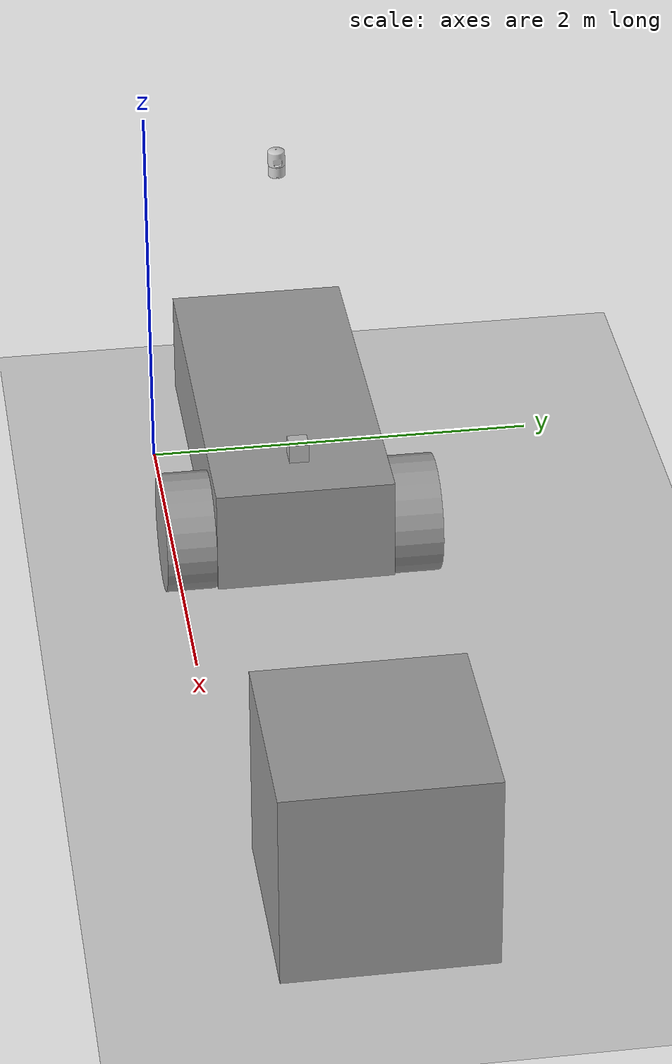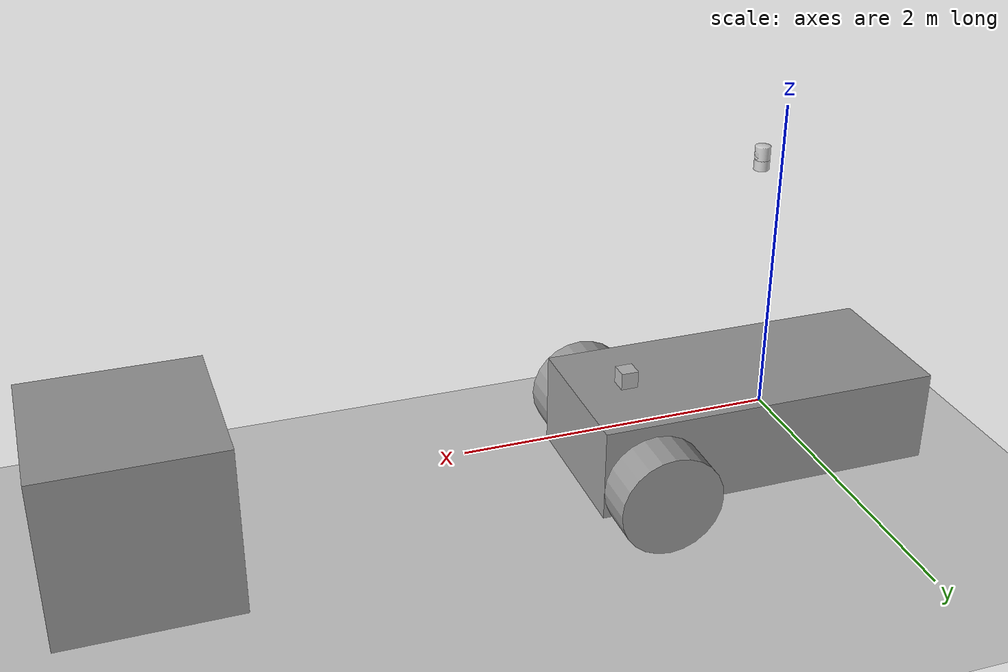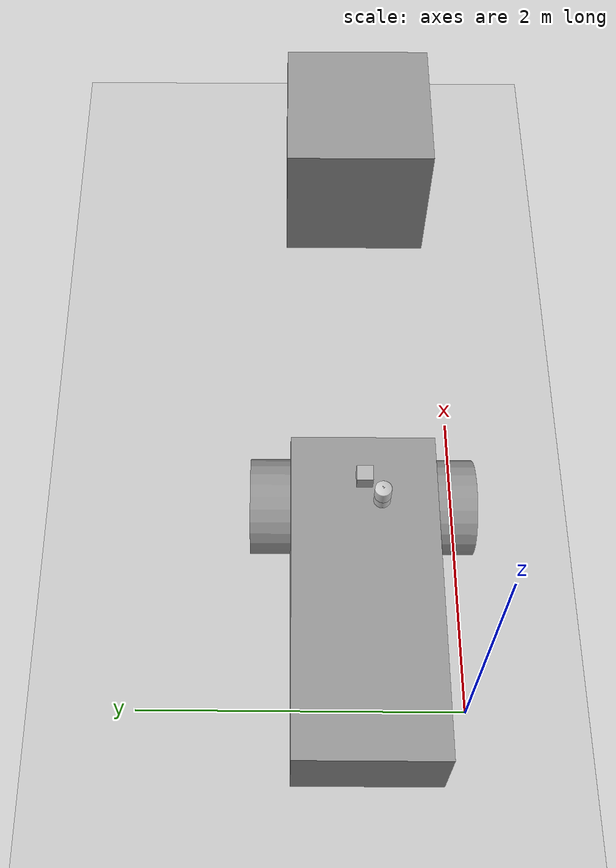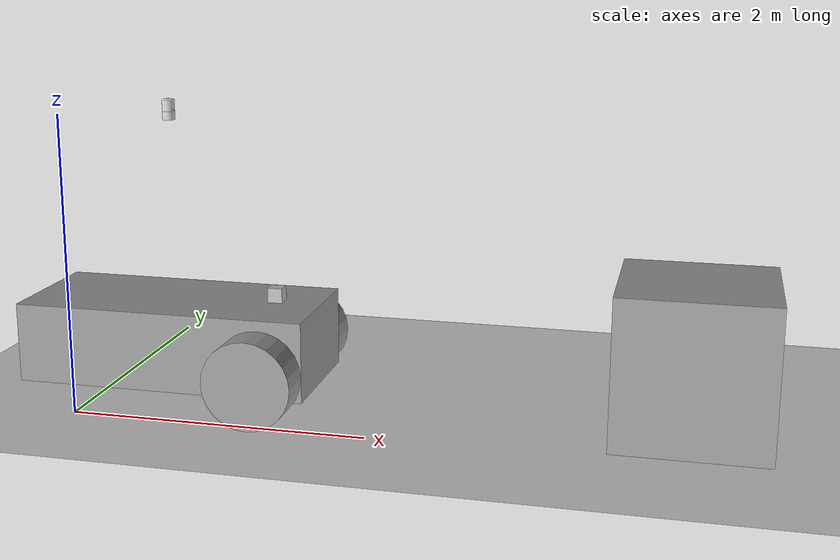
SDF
<sdf version="1.7">
 <world name="default">
  <light name="sun" type="directional">
   <pose>0 0 10 0 -0 0</pose>
   <diffuse>0.8 0.8 0.8 1</diffuse>
   <specular>0.2 0.2 0.2 1</specular>
   <attenuation>
    <range>1000</range>
    <constant>0.9</constant>
    <linear>0.01</linear>
    <quadratic>0.001</quadratic>
   </attenuation>
   <direction>-0.5 0.1 -0.9</direction>
   <spot><inner_angle>0</inner_angle><outer_angle>0</outer_angle><falloff>0</falloff></spot>
  </light>
  <model name="ground_plane">
   <static>1</static>
   <link name="link">
    <collision name="collision">
     <geometry><plane><normal>0 0 1</normal><size>100 100</size></plane></geometry>
     <surface><friction><ode><mu>100</mu><mu2>50</mu2></ode></friction></surface>
    </collision>
    <visual name="visual">
     <cast_shadows>0</cast_shadows>
     <geometry><plane><normal>0 0 1</normal><size>100 100</size></plane></geometry>
     <material>
      <script><uri>file://media/materials/scripts/gazebo.material</uri><name>Gazebo/Grey</name></script>
     </material>
    </visual>
   </link>
  </model>
  <gravity>0 0 -9.8</gravity>
  <magnetic_field>6e-06 2.3e-05 -4.2e-05</magnetic_field>
  <atmosphere type="adiabatic"/>
  <physics type="ode">
   <max_step_size>0.001</max_step_size>
   <real_time_factor>1</real_time_factor>
   <real_time_update_rate>1000</real_time_update_rate>
  </physics>
  <scene><ambient>0.4 0.4 0.4 1</ambient><background>0.7 0.7 0.7 1</background><shadows>1</shadows></scene>
  <spherical_coordinates>
   <surface_model>EARTH_WGS84</surface_model>
   <latitude_deg>0</latitude_deg>
   <longitude_deg>0</longitude_deg>
   <elevation>0</elevation>
   <heading_deg>0</heading_deg>
  </spherical_coordinates>
  <audio><device>default</device></audio>
  <model name="velodyne_hdl-32">
   <link name="link_0">
    <inertial>
     <mass>0.978008</mass>
     <inertia>
      <ixx>0.122564</ixx>
      <ixy>0</ixy>
      <ixz>0</ixz>
      <iyy>0.407773</iyy>
      <iyz>0</iyz>
      <izz>0.472213</izz>
     </inertia>
    </inertial>
    <pose>0 0 0.4 0 -0 0</pose>
    <visual name="visual">
     <geometry><box><size>2.01366 0.897702 0.541504</size></box></geometry>
     <material>
      <lighting>1</lighting>
      <script><uri>file://media/materials/scripts/gazebo.material</uri><name>Gazebo/Grey</name></script>
      <shader type="pixel"><normal_map>__default__</normal_map></shader>
      <ambient>0.3 0.3 0.3 1</ambient>
      <diffuse>0.7 0.7 0.7 1</diffuse>
      <specular>0.01 0.01 0.01 1</specular>
      <emissive>0 0 0 1</emissive>
     </material>
    </visual>
    <collision name="collision">
     <geometry><box><size>2.01366 0.897702 0.541504</size></box></geometry>
     <surface>
      <friction>
       <ode><mu>1</mu><mu2>1</mu2><fdir1>0 0 0</fdir1><slip1>0</slip1><slip2>0</slip2></ode>
       <torsional>
        <coefficient>1</coefficient>
        <patch_radius>0</patch_radius>
        <surface_radius>0</surface_radius>
        <use_patch_radius>1</use_patch_radius>
        <ode><slip>0</slip></ode>
       </torsional>
      </friction>
      <bounce><restitution_coefficient>0</restitution_coefficient><threshold>1e+06</threshold></bounce>
      <contact>
       <collide_without_contact>0</collide_without_contact>
       <collide_without_contact_bitmask>1</collide_without_contact_bitmask>
       <collide_bitmask>1</collide_bitmask>
       <ode>
        <soft_cfm>0</soft_cfm>
        <soft_erp>0.2</soft_erp>
        <kp>1e+13</kp>
        <kd>1</kd>
        <max_vel>0.01</max_vel>
        <min_depth>0</min_depth>
       </ode>
       <bullet>
        <split_impulse>1</split_impulse>
        <split_impulse_penetration_threshold>-0.01</split_impulse_penetration_threshold>
        <soft_cfm>0</soft_cfm>
        <soft_erp>0.2</soft_erp>
        <kp>1e+13</kp>
        <kd>1</kd>
       </bullet>
      </contact>
     </surface>
    </collision>
   </link>
   <link name="link_1">
    <inertial>
     <mass>1</mass>
     <inertia><ixx>0.145833</ixx><ixy>0</ixy><ixz>0</ixz><iyy>0.145833</iyy><iyz>0</iyz><izz>0.125</izz></inertia>
    </inertial>
    <pose>0.70683 -0.573879 0.3 1.5707 -0 0</pose>
    <visual name="visual">
     <geometry><cylinder><radius>0.3</radius><length>0.25</length></cylinder></geometry>
     <material>
      <lighting>1</lighting>
      <script><uri>file://media/materials/scripts/gazebo.material</uri><name>Gazebo/Grey</name></script>
      <shader type="pixel"><normal_map>__default__</normal_map></shader>
      <ambient>0.3 0.3 0.3 1</ambient>
      <diffuse>0.7 0.7 0.7 1</diffuse>
      <specular>0.01 0.01 0.01 1</specular>
      <emissive>0 0 0 1</emissive>
     </material>
    </visual>
    <collision name="collision">
     <geometry><cylinder><radius>0.3</radius><length>0.25</length></cylinder></geometry>
     <surface>
      <friction>
       <ode><mu>1</mu><mu2>1</mu2><fdir1>0 0 0</fdir1><slip1>0</slip1><slip2>0</slip2></ode>
       <torsional>
        <coefficient>1</coefficient>
        <patch_radius>0</patch_radius>
        <surface_radius>0</surface_radius>
        <use_patch_radius>1</use_patch_radius>
        <ode><slip>0</slip></ode>
       </torsional>
      </friction>
      <bounce><restitution_coefficient>0</restitution_coefficient><threshold>1e+06</threshold></bounce>
      <contact>
       <collide_without_contact>0</collide_without_contact>
       <collide_without_contact_bitmask>1</collide_without_contact_bitmask>
       <collide_bitmask>1</collide_bitmask>
       <ode>
        <soft_cfm>0</soft_cfm>
        <soft_erp>0.2</soft_erp>
        <kp>1e+13</kp>
        <kd>1</kd>
        <max_vel>0.01</max_vel>
        <min_depth>0</min_depth>
       </ode>
       <bullet>
        <split_impulse>1</split_impulse>
        <split_impulse_penetration_threshold>-0.01</split_impulse_penetration_threshold>
        <soft_cfm>0</soft_cfm>
        <soft_erp>0.2</soft_erp>
        <kp>1e+13</kp>
        <kd>1</kd>
       </bullet>
      </contact>
     </surface>
    </collision>
   </link>
   <link name="link_1_clone">
    <inertial>
     <mass>1</mass>
     <inertia><ixx>0.145833</ixx><ixy>0</ixy><ixz>0</ixz><iyy>0.145833</iyy><iyz>0</iyz><izz>0.125</izz></inertia>
    </inertial>
    <pose>0.70683 0.573879 0.3 1.5707 -0 0</pose>
    <visual name="visual">
     <geometry><cylinder><radius>0.3</radius><length>0.25</length></cylinder></geometry>
     <material>
      <lighting>1</lighting>
      <script><uri>file://media/materials/scripts/gazebo.material</uri><name>Gazebo/Grey</name></script>
      <shader type="pixel"><normal_map>__default__</normal_map></shader>
      <ambient>0.3 0.3 0.3 1</ambient>
      <diffuse>0.7 0.7 0.7 1</diffuse>
      <specular>0.01 0.01 0.01 1</specular>
      <emissive>0 0 0 1</emissive>
     </material>
    </visual>
    <collision name="collision">
     <geometry><cylinder><radius>0.3</radius><length>0.25</length></cylinder></geometry>
     <surface>
      <friction>
       <ode><mu>1</mu><mu2>1</mu2><fdir1>0 0 0</fdir1><slip1>0</slip1><slip2>0</slip2></ode>
       <torsional>
        <coefficient>1</coefficient>
        <patch_radius>0</patch_radius>
        <surface_radius>0</surface_radius>
        <use_patch_radius>1</use_patch_radius>
        <ode><slip>0</slip></ode>
       </torsional>
      </friction>
      <bounce><restitution_coefficient>0</restitution_coefficient><threshold>1e+06</threshold></bounce>
      <contact>
       <collide_without_contact>0</collide_without_contact>
       <collide_without_contact_bitmask>1</collide_without_contact_bitmask>
       <collide_bitmask>1</collide_bitmask>
       <ode>
        <soft_cfm>0</soft_cfm>
        <soft_erp>0.2</soft_erp>
        <kp>1e+13</kp>
        <kd>1</kd>
        <max_vel>0.01</max_vel>
        <min_depth>0</min_depth>
       </ode>
       <bullet>
        <split_impulse>1</split_impulse>
        <split_impulse_penetration_threshold>-0.01</split_impulse_penetration_threshold>
        <soft_cfm>0</soft_cfm>
        <soft_erp>0.2</soft_erp>
        <kp>1e+13</kp>
        <kd>1</kd>
       </bullet>
      </contact>
     </surface>
    </collision>
   </link>
   <link name="link_2">
    <inertial>
     <mass>1</mass>
     <inertia><ixx>0.1</ixx><ixy>0</ixy><ixz>0</ixz><iyy>0.1</iyy><iyz>0</iyz><izz>0.1</izz></inertia>
    </inertial>
    <pose>-0.80683 0 0.2 0 -0 0</pose>
    <visual name="visual">
     <geometry><sphere><radius>0.2</radius></sphere></geometry>
     <material>
      <lighting>1</lighting>
      <script><uri>file://media/materials/scripts/gazebo.material</uri><name>Gazebo/Grey</name></script>
      <shader type="pixel"><normal_map>__default__</normal_map></shader>
      <ambient>0.3 0.3 0.3 1</ambient>
      <diffuse>0.7 0.7 0.7 1</diffuse>
      <specular>0.01 0.01 0.01 1</specular>
      <emissive>0 0 0 1</emissive>
     </material>
    </visual>
    <collision name="collision">
     <geometry><sphere><radius>0.2</radius></sphere></geometry>
     <surface>
      <friction>
       <ode><mu>1</mu><mu2>1</mu2><fdir1>0 0 0</fdir1><slip1>0</slip1><slip2>0</slip2></ode>
       <torsional>
        <coefficient>1</coefficient>
        <patch_radius>0</patch_radius>
        <surface_radius>0</surface_radius>
        <use_patch_radius>1</use_patch_radius>
        <ode><slip>0</slip></ode>
       </torsional>
      </friction>
      <bounce><restitution_coefficient>0</restitution_coefficient><threshold>1e+06</threshold></bounce>
      <contact>
       <collide_without_contact>0</collide_without_contact>
       <collide_without_contact_bitmask>1</collide_without_contact_bitmask>
       <collide_bitmask>1</collide_bitmask>
       <ode>
        <soft_cfm>0</soft_cfm>
        <soft_erp>0.2</soft_erp>
        <kp>1e+13</kp>
        <kd>1</kd>
        <max_vel>0.01</max_vel>
        <min_depth>0</min_depth>
       </ode>
       <bullet>
        <split_impulse>1</split_impulse>
        <split_impulse_penetration_threshold>-0.01</split_impulse_penetration_threshold>
        <soft_cfm>0</soft_cfm>
        <soft_erp>0.2</soft_erp>
        <kp>1e+13</kp>
        <kd>1</kd>
       </bullet>
      </contact>
     </surface>
    </collision>
   </link>
   <model name="depth_camera">
    <link name="link">
     <pose>0 0 0.05 0 -0 0</pose>
     <inertial>
      <mass>0.1</mass>
      <inertia>
       <ixx>0.000166667</ixx>
       <iyy>0.000166667</iyy>
       <izz>0.000166667</izz>
       <ixy>0</ixy>
       <ixz>0</ixz>
       <iyz>0</iyz>
      </inertia>
     </inertial>
     <collision name="collision"><geometry><box><size>0.1 0.1 0.1</size></box></geometry></collision>
     <visual name="visual"><geometry><box><size>0.1 0.1 0.1</size></box></geometry></visual>
     <sensor name="camera" type="depth">
      <camera>
       <horizontal_fov>1.047</horizontal_fov>
       <image><width>320</width><height>240</height></image>
       <clip><near>0.1</near><far>100</far></clip>
      </camera>
      <always_on>1</always_on>
      <update_rate>30</update_rate>
      <visualize>1</visualize>
     </sensor>
    </link>
    <pose>0.703483 0.000736 0.682741 0 -0 0</pose>
   </model>
   <model name="velodyne">
    <link name="base">
     <pose>0 0 0.029335 0 -0 0</pose>
     <inertial>
      <mass>1.2</mass>
      <inertia>
       <ixx>0.00108747</ixx>
       <iyy>0.00108747</iyy>
       <izz>0.00109244</izz>
       <ixy>0</ixy>
       <ixz>0</ixz>
       <iyz>0</iyz>
      </inertia>
     </inertial>
     <collision name="base_collision">
      <geometry><cylinder><radius>0.04267</radius><length>0.05867</length></cylinder></geometry>
     </collision>
     <visual name="base_visual">
      <pose>0 0 -0.029335 0 -0 0</pose>
      <geometry><mesh><uri>model://velodyne_hdl32/meshes/velodyne_base.dae</uri></mesh></geometry>
     </visual>
    </link>
    <link name="top">
     <pose>0 0 0.095455 0 -0 0</pose>
     <inertial>
      <mass>0.1</mass>
      <inertia>
       <ixx>9.0623e-05</ixx>
       <iyy>9.0623e-05</iyy>
       <izz>9.1036e-05</izz>
       <ixy>0</ixy>
       <ixz>0</ixz>
       <iyz>0</iyz>
      </inertia>
     </inertial>
     <collision name="top_collision">
      <geometry><cylinder><radius>0.04267</radius><length>0.07357</length></cylinder></geometry>
     </collision>
     <visual name="top_visual">
      <pose>0 0 -0.037679 0 -0 1.5707</pose>
      <geometry><mesh><uri>model://velodyne_hdl32/meshes/velodyne_top.dae</uri></mesh></geometry>
     </visual>
     <sensor name="sensor" type="ray">
      <pose>0 0 -0.004645 1.5707 -0 0</pose>
      <visualize>1</visualize>
      <update_rate>30</update_rate>
      <ray>
       <noise><type>gaussian</type><mean>0</mean><stddev>0.1</stddev></noise>
       <scan>
        <horizontal>
         <samples>32</samples>
         <resolution>1</resolution>
         <min_angle>-0.535292</min_angle>
         <max_angle>0.186227</max_angle>
        </horizontal>
        <vertical><samples>1</samples><min_angle>0</min_angle><max_angle>0</max_angle></vertical>
       </scan>
       <range><min>0.1</min><max>70</max><resolution>0.02</resolution></range>
      </ray>
     </sensor>
    </link>
    <joint name="joint" type="revolute">
     <pose>0 0 -0.036785 0 -0 0</pose>
     <parent>base</parent>
     <child>top</child>
     <axis>
      <xyz>0 0 1</xyz>
      <limit><lower>-1e+16</lower><upper>1e+16</upper></limit>
      <dynamics><spring_reference>0</spring_reference><spring_stiffness>0</spring_stiffness></dynamics>
     </axis>
    </joint>
    <pose>-0.035629 0.00252 1.89796 0 -0 0</pose>
   </model>
   <joint name="link_0_JOINT_0" type="revolute">
    <parent>link_0</parent>
    <child>link_1_clone</child>
    <axis>
     <xyz>0 0 1</xyz>
     <limit>
      <lower>-1.79769e+308</lower>
      <upper>1.79769e+308</upper>
      <effort>-1</effort>
      <velocity>-1</velocity>
     </limit>
     <dynamics>
      <spring_reference>0</spring_reference>
      <spring_stiffness>0</spring_stiffness>
      <damping>0</damping>
      <friction>0</friction>
     </dynamics>
    </axis>
    <physics>
     <ode><limit><cfm>0</cfm><erp>0.2</erp></limit><suspension><cfm>0</cfm><erp>0.2</erp></suspension></ode>
    </physics>
   </joint>
   <joint name="link_0_JOINT_1" type="revolute">
    <parent>link_0</parent>
    <child>link_1</child>
    <axis>
     <xyz>0 0 1</xyz>
     <limit>
      <lower>-1.79769e+308</lower>
      <upper>1.79769e+308</upper>
      <effort>-1</effort>
      <velocity>-1</velocity>
     </limit>
     <dynamics>
      <spring_reference>0</spring_reference>
      <spring_stiffness>0</spring_stiffness>
      <damping>0</damping>
      <friction>0</friction>
     </dynamics>
    </axis>
    <physics>
     <ode><limit><cfm>0</cfm><erp>0.2</erp></limit><suspension><cfm>0</cfm><erp>0.2</erp></suspension></ode>
    </physics>
   </joint>
   <joint name="link_0_JOINT_2" type="ball">
    <parent>link_0</parent>
    <child>link_2</child>
    <physics>
     <ode><limit><cfm>0</cfm><erp>0.2</erp></limit><suspension><cfm>0</cfm><erp>0.2</erp></suspension></ode>
    </physics>
   </joint>
   <joint name="link_0_JOINT_3" type="fixed">
    <parent>link_0</parent>
    <child>depth_camera::link</child>
    <physics>
     <ode><limit><cfm>0</cfm><erp>0.2</erp></limit><suspension><cfm>0</cfm><erp>0.2</erp></suspension></ode>
    </physics>
   </joint>
   <joint name="link_0_JOINT_6" type="fixed">
    <parent>link_0</parent>
    <child>velodyne::base</child>
    <physics>
     <ode><limit><cfm>0</cfm><erp>0.2</erp></limit><suspension><cfm>0</cfm><erp>0.2</erp></suspension></ode>
    </physics>
   </joint>
   <static>0</static>
   <plugin name="follower" filename="libFollowerPlugin.so"/>
   <pose>0.526044 0.614918 3e-06 -0 -1.2e-05 -1.3e-05</pose>
  </model>
  <model name="unit_box">
   <pose>4.01749 0.590038 0.5 0 -0 0</pose>
   <link name="link">
    <inertial>
     <mass>1</mass>
     <inertia>
      <ixx>0.166667</ixx>
      <ixy>0</ixy>
      <ixz>0</ixz>
      <iyy>0.166667</iyy>
      <iyz>0</iyz>
      <izz>0.166667</izz>
     </inertia>
    </inertial>
    <collision name="collision"><geometry><box><size>1 1 1</size></box></geometry></collision>
    <visual name="visual">
     <geometry><box><size>1 1 1</size></box></geometry>
     <material>
      <script><name>Gazebo/Grey</name><uri>file://media/materials/scripts/gazebo.material</uri></script>
     </material>
    </visual>
   </link>
  </model>
  <joint type="revolute" name="joint">
   <pose>0 0 -0.036785 0 0 0</pose>
   <parent>base</parent>
   <child>top</child>
   <axis><xyz>0 0 1</xyz><limit><lower>-10000000000000000</lower><upper>10000000000000000</upper></limit></axis>
  </joint>
 </world>
</sdf>
